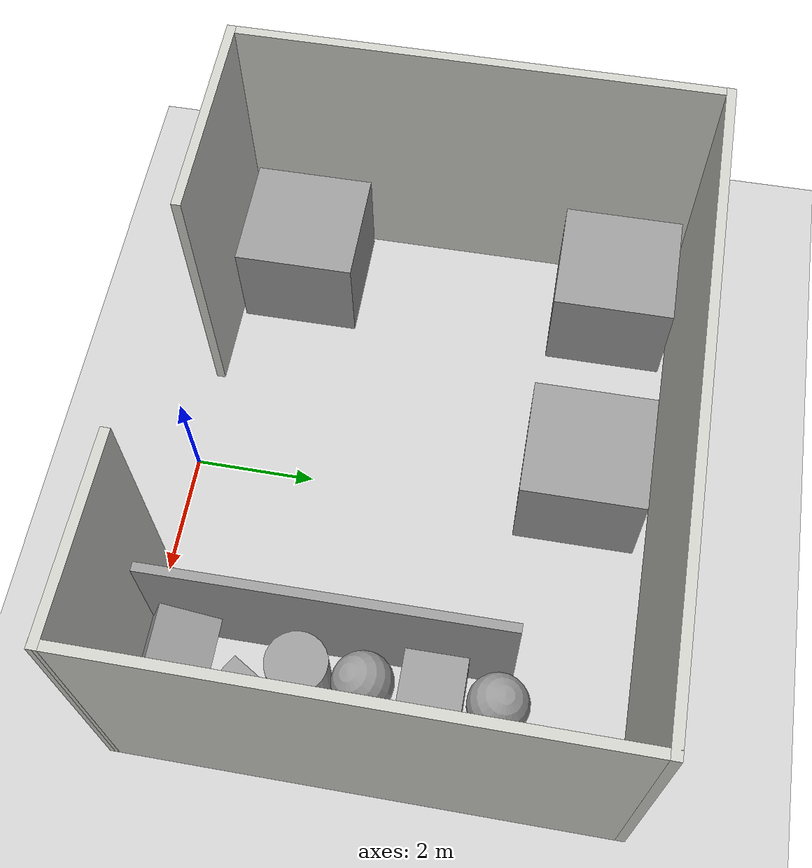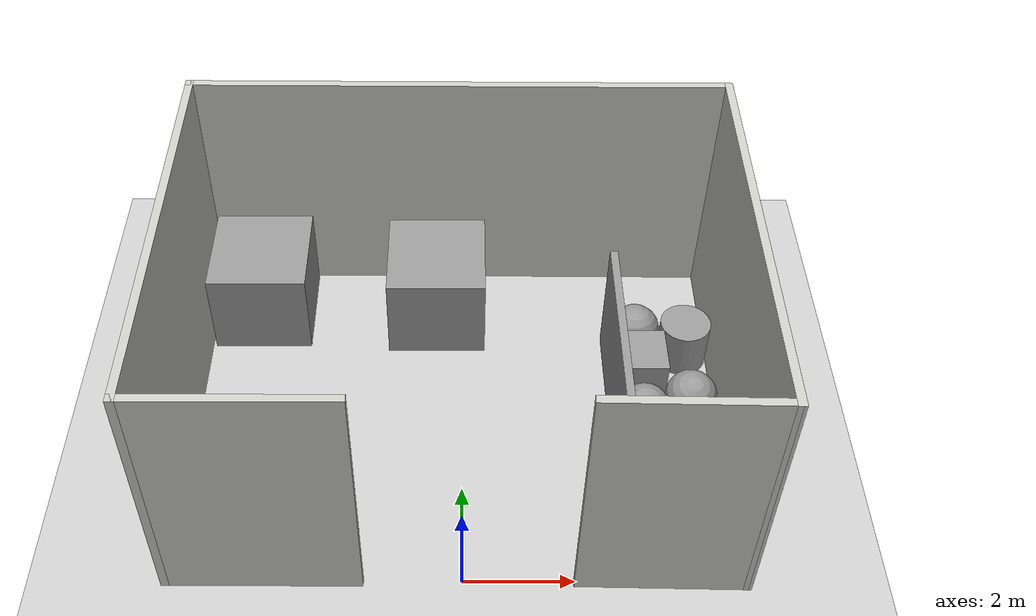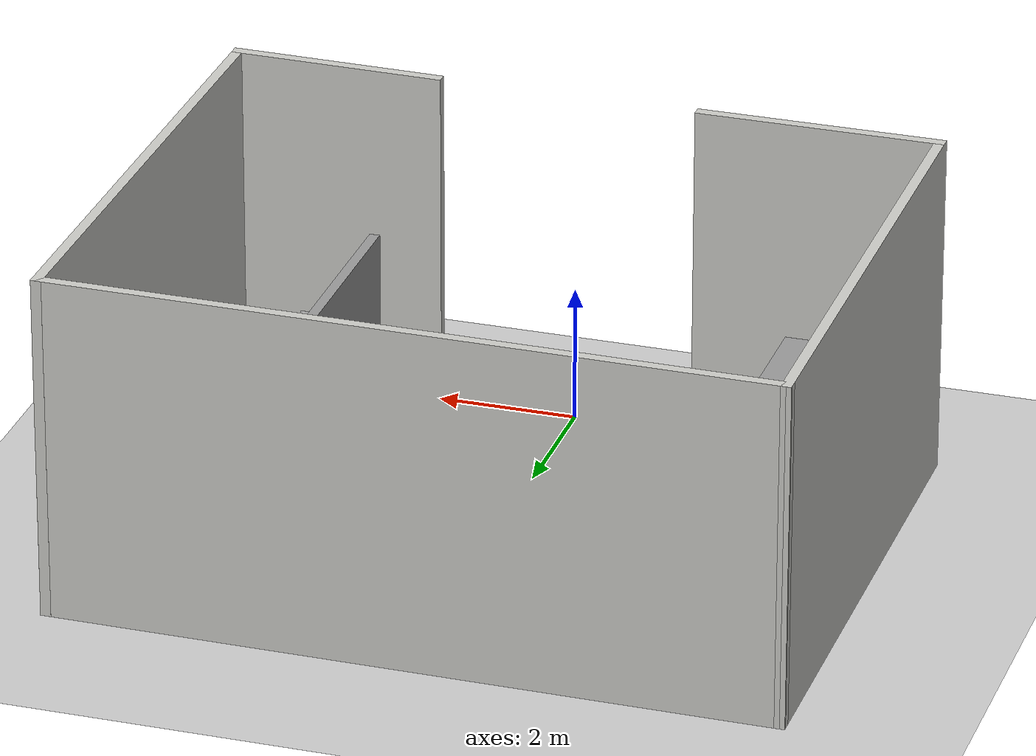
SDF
<sdf version="1.7">
 <world name="default">
  <light name="sun" type="directional">
   <pose>0 0 10 0 -0 0</pose>
   <diffuse>0.8 0.8 0.8 1</diffuse>
   <specular>0.2 0.2 0.2 1</specular>
   <attenuation>
    <range>1000</range>
    <constant>0.9</constant>
    <linear>0.01</linear>
    <quadratic>0.001</quadratic>
   </attenuation>
   <direction>-0.5 0.1 -0.9</direction>
   <spot><inner_angle>0</inner_angle><outer_angle>0</outer_angle><falloff>0</falloff></spot>
  </light>
  <model name="ground_plane">
   <static>1</static>
   <link name="link">
    <collision name="collision">
     <geometry><plane><normal>0 0 1</normal><size>100 100</size></plane></geometry>
     <surface><friction><ode><mu>100</mu><mu2>50</mu2></ode></friction></surface>
    </collision>
    <visual name="visual">
     <cast_shadows>0</cast_shadows>
     <geometry><plane><normal>0 0 1</normal><size>100 100</size></plane></geometry>
     <material>
      <script><uri>file://media/materials/scripts/gazebo.material</uri><name>Gazebo/Grey</name></script>
     </material>
    </visual>
   </link>
  </model>
  <gravity>0 0 -9.8</gravity>
  <magnetic_field>6e-06 2.3e-05 -4.2e-05</magnetic_field>
  <atmosphere type="adiabatic"/>
  <physics type="ode">
   <max_step_size>0.001</max_step_size>
   <real_time_factor>1</real_time_factor>
   <real_time_update_rate>1000</real_time_update_rate>
  </physics>
  <scene><ambient>0.4 0.4 0.4 1</ambient><background>0.7 0.7 0.7 1</background><shadows>1</shadows></scene>
  <audio><device>default</device></audio>
  <spherical_coordinates>
   <surface_model>EARTH_WGS84</surface_model>
   <latitude_deg>0</latitude_deg>
   <longitude_deg>0</longitude_deg>
   <elevation>0</elevation>
   <heading_deg>0</heading_deg>
  </spherical_coordinates>
  <model name="Untitled">
   <pose>-0.0765 3.87918 0 0 -0 0</pose>
   <link name="Wall_10">
    <collision name="Wall_10_Collision">
     <geometry><box><size>3.5535 0.15 5</size></box></geometry>
     <pose>0 0 2.5 0 -0 0</pose>
    </collision>
    <visual name="Wall_10_Visual">
     <pose>0 0 2.5 0 -0 0</pose>
     <geometry><box><size>3.5535 0.15 5</size></box></geometry>
     <material>
      <script><uri>file://media/materials/scripts/gazebo.material</uri><name>Gazebo/CeilingTiled</name></script>
      <ambient>1 1 1 1</ambient>
     </material>
     <meta><layer>0</layer></meta>
    </visual>
    <pose>-3.4285 -3.89752 0 0 -0 3.14159</pose>
   </link>
   <link name="Wall_11">
    <collision name="Wall_11_Collision">
     <geometry><box><size>8 0.15 5</size></box></geometry>
     <pose>0 0 2.5 0 -0 0</pose>
    </collision>
    <visual name="Wall_11_Visual">
     <pose>0 0 2.5 0 -0 0</pose>
     <geometry><box><size>8 0.15 5</size></box></geometry>
     <material>
      <script><uri>file://media/materials/scripts/gazebo.material</uri><name>Gazebo/CeilingTiled</name></script>
      <ambient>1 1 1 1</ambient>
     </material>
     <meta><layer>0</layer></meta>
    </visual>
    <pose>-5.1305 0.02748 0 0 -0 1.5708</pose>
   </link>
   <link name="Wall_12">
    <collision name="Wall_12_Collision">
     <geometry><box><size>10.4116 0.15 5</size></box></geometry>
     <pose>0 0 2.5 0 -0 0</pose>
    </collision>
    <visual name="Wall_12_Visual">
     <pose>0 0 2.5 0 -0 0</pose>
     <geometry><box><size>10.4116 0.15 5</size></box></geometry>
     <material>
      <script><uri>file://media/materials/scripts/gazebo.material</uri><name>Gazebo/CeilingTiled</name></script>
      <ambient>1 1 1 1</ambient>
     </material>
     <meta><layer>0</layer></meta>
    </visual>
    <pose>-0 3.92548 0 0 -0 -0.005263</pose>
   </link>
   <link name="Wall_13">
    <collision name="Wall_13_Collision">
     <geometry><box><size>8.00062 0.15 5</size></box></geometry>
     <pose>0 0 2.5 0 -0 0</pose>
    </collision>
    <visual name="Wall_13_Visual">
     <pose>0 0 2.5 0 -0 0</pose>
     <geometry><box><size>8.00062 0.15 5</size></box></geometry>
     <material>
      <script><uri>file://media/materials/scripts/gazebo.material</uri><name>Gazebo/CeilingTiled</name></script>
      <ambient>1 1 1 1</ambient>
     </material>
     <meta><layer>0</layer></meta>
    </visual>
    <pose>5.1035 -0.026519 0 0 -0 -1.57767</pose>
   </link>
   <link name="Wall_14">
    <collision name="Wall_14_Collision">
     <geometry><box><size>3.10734 0.15 5</size></box></geometry>
     <pose>0 0 2.5 0 -0 0</pose>
    </collision>
    <visual name="Wall_14_Visual">
     <pose>0 0 2.5 0 -0 0</pose>
     <geometry><box><size>3.10734 0.15 5</size></box></geometry>
     <material>
      <script><uri>file://media/materials/scripts/gazebo.material</uri><name>Gazebo/CeilingTiled</name></script>
      <ambient>1 1 1 1</ambient>
     </material>
     <meta><layer>0</layer></meta>
    </visual>
    <pose>3.598 -3.92452 0 0 -0 3.12333</pose>
   </link>
   <static>1</static>
  </model>
  <model name="unit_box">
   <pose>-4.08496 6.64776 0.894775 -5e-06 -0 -0.000536</pose>
   <link name="link">
    <inertial>
     <mass>1</mass>
     <inertia>
      <ixx>0.166667</ixx>
      <ixy>0</ixy>
      <ixz>0</ixz>
      <iyy>0.166667</iyy>
      <iyz>0</iyz>
      <izz>0.166667</izz>
     </inertia>
    </inertial>
    <collision name="collision"><geometry><box><size>1.95669 2.01631 1.78955</size></box></geometry></collision>
    <visual name="visual">
     <geometry><box><size>1.95669 2.01631 1.78955</size></box></geometry>
     <material>
      <script><name>Gazebo/Grey</name><uri>file://media/materials/scripts/gazebo.material</uri></script>
     </material>
    </visual>
   </link>
  </model>
  <model name="unit_box_clone">
   <pose>-0.521437 6.52877 0.894775 0 -5e-06 -0.000536</pose>
   <link name="link">
    <inertial>
     <mass>1</mass>
     <inertia>
      <ixx>0.166667</ixx>
      <ixy>0</ixy>
      <ixz>0</ixz>
      <iyy>0.166667</iyy>
      <iyz>0</iyz>
      <izz>0.166667</izz>
     </inertia>
    </inertial>
    <collision name="collision"><geometry><box><size>1.95669 2.0163 1.78956</size></box></geometry></collision>
    <visual name="visual">
     <geometry><box><size>1.95669 2.0163 1.78956</size></box></geometry>
     <material>
      <script><name>Gazebo/Grey</name><uri>file://media/materials/scripts/gazebo.material</uri></script>
     </material>
    </visual>
   </link>
  </model>
  <model name="unit_box_clone_0">
   <pose>-4.08296 1.13861 0.894775 0 -5e-06 -0.000172</pose>
   <link name="link">
    <inertial>
     <mass>1</mass>
     <inertia>
      <ixx>0.166667</ixx>
      <ixy>0</ixy>
      <ixz>0</ixz>
      <iyy>0.166667</iyy>
      <iyz>0</iyz>
      <izz>0.166667</izz>
     </inertia>
    </inertial>
    <collision name="collision"><geometry><box><size>1.95669 2.0163 1.78956</size></box></geometry></collision>
    <visual name="visual">
     <geometry><box><size>1.95669 2.0163 1.78956</size></box></geometry>
     <material>
      <script><name>Gazebo/Grey</name><uri>file://media/materials/scripts/gazebo.material</uri></script>
     </material>
    </visual>
   </link>
  </model>
  <model name="Untitled_0">
   <pose>1.50627 2.97398 0 0 -0 0</pose>
   <link name="Wall_21">
    <collision name="Wall_21_Collision">
     <geometry><box><size>5.75 0.15 2.5</size></box></geometry>
     <pose>0 0 1.25 0 -0 0</pose>
    </collision>
    <visual name="Wall_21_Visual">
     <pose>0 0 1.25 0 -0 0</pose>
     <geometry><box><size>5.75 0.15 2.5</size></box></geometry>
     <material>
      <script><uri>file://media/materials/scripts/gazebo.material</uri><name>Gazebo/Grey</name></script>
      <ambient>1 1 1 1</ambient>
     </material>
     <meta><layer>0</layer></meta>
    </visual>
    <pose>1.43127 0 0 0 -0 1.5708</pose>
   </link>
   <static>1</static>
  </model>
  <model name="unit_cylinder">
   <pose>3.51277 2.54344 0.5 0 -0 0.609852</pose>
   <link name="link">
    <inertial>
     <mass>1</mass>
     <inertia><ixx>0.145833</ixx><ixy>0</ixy><ixz>0</ixz><iyy>0.145833</iyy><iyz>0</iyz><izz>0.125</izz></inertia>
    </inertial>
    <collision name="collision">
     <geometry><cylinder><radius>0.5</radius><length>1</length></cylinder></geometry>
    </collision>
    <visual name="visual">
     <geometry><cylinder><radius>0.5</radius><length>1</length></cylinder></geometry>
     <material>
      <script><name>Gazebo/Grey</name><uri>file://media/materials/scripts/gazebo.material</uri></script>
     </material>
    </visual>
   </link>
  </model>
  <model name="unit_sphere">
   <pose>3.51344 3.5597 0.5 0.427295 0.149885 -0.28465</pose>
   <link name="link">
    <inertial>
     <mass>1</mass>
     <inertia><ixx>0.1</ixx><ixy>0</ixy><ixz>0</ixz><iyy>0.1</iyy><iyz>0</iyz><izz>0.1</izz></inertia>
    </inertial>
    <collision name="collision"><geometry><sphere><radius>0.5</radius></sphere></geometry></collision>
    <visual name="visual">
     <geometry><sphere><radius>0.5</radius></sphere></geometry>
     <material>
      <script><name>Gazebo/Grey</name><uri>file://media/materials/scripts/gazebo.material</uri></script>
     </material>
    </visual>
   </link>
  </model>
  <model name="unit_cylinder_0">
   <pose>4.44547 2.90415 0.499993 0 4e-06 0.065394</pose>
   <link name="link">
    <inertial>
     <mass>1</mass>
     <inertia><ixx>0.145833</ixx><ixy>0</ixy><ixz>0</ixz><iyy>0.145833</iyy><iyz>0</iyz><izz>0.125</izz></inertia>
    </inertial>
    <collision name="collision">
     <geometry><cylinder><radius>0.5</radius><length>1</length></cylinder></geometry>
    </collision>
    <visual name="visual">
     <geometry><cylinder><radius>0.5</radius><length>1</length></cylinder></geometry>
     <material>
      <script><name>Gazebo/Grey</name><uri>file://media/materials/scripts/gazebo.material</uri></script>
     </material>
    </visual>
   </link>
  </model>
  <model name="unit_box_0">
   <pose>3.47686 0.650234 0.630129 -0.307064 -0.005164 0.007324</pose>
   <link name="link">
    <inertial>
     <mass>1</mass>
     <inertia>
      <ixx>0.166667</ixx>
      <ixy>0</ixy>
      <ixz>0</ixz>
      <iyy>0.166667</iyy>
      <iyz>0</iyz>
      <izz>0.166667</izz>
     </inertia>
    </inertial>
    <collision name="collision"><geometry><box><size>1 1 1</size></box></geometry></collision>
    <visual name="visual">
     <geometry><box><size>1 1 1</size></box></geometry>
     <material>
      <script><name>Gazebo/Grey</name><uri>file://media/materials/scripts/gazebo.material</uri></script>
     </material>
    </visual>
   </link>
  </model>
  <model name="unit_sphere_0">
   <pose>4.45234 3.90764 0.5 0.181888 0.183712 -0.669124</pose>
   <link name="link">
    <inertial>
     <mass>1</mass>
     <inertia><ixx>0.1</ixx><ixy>0</ixy><ixz>0</ixz><iyy>0.1</iyy><iyz>0</iyz><izz>0.1</izz></inertia>
    </inertial>
    <collision name="collision"><geometry><sphere><radius>0.5</radius></sphere></geometry></collision>
    <visual name="visual">
     <geometry><sphere><radius>0.5</radius></sphere></geometry>
     <material>
      <script><name>Gazebo/Grey</name><uri>file://media/materials/scripts/gazebo.material</uri></script>
     </material>
    </visual>
   </link>
  </model>
  <model name="unit_box_1">
   <pose>3.51263 4.64949 0.499995 0 9e-06 0.000189</pose>
   <link name="link">
    <inertial>
     <mass>1</mass>
     <inertia>
      <ixx>0.166667</ixx>
      <ixy>0</ixy>
      <ixz>0</ixz>
      <iyy>0.166667</iyy>
      <iyz>0</iyz>
      <izz>0.166667</izz>
     </inertia>
    </inertial>
    <collision name="collision"><geometry><box><size>1 1 1</size></box></geometry></collision>
    <visual name="visual">
     <geometry><box><size>1 1 1</size></box></geometry>
     <material>
      <script><name>Gazebo/Grey</name><uri>file://media/materials/scripts/gazebo.material</uri></script>
     </material>
    </visual>
   </link>
  </model>
  <model name="unit_cylinder_1">
   <pose>4.4624 5.36831 0.499997 4e-06 -2e-06 -0.395742</pose>
   <link name="link">
    <inertial>
     <mass>1</mass>
     <inertia><ixx>0.145833</ixx><ixy>0</ixy><ixz>0</ixz><iyy>0.145833</iyy><iyz>0</iyz><izz>0.125</izz></inertia>
    </inertial>
    <collision name="collision">
     <geometry><cylinder><radius>0.5</radius><length>1</length></cylinder></geometry>
    </collision>
    <visual name="visual">
     <geometry><cylinder><radius>0.5</radius><length>1</length></cylinder></geometry>
     <material>
      <script><name>Gazebo/Grey</name><uri>file://media/materials/scripts/gazebo.material</uri></script>
     </material>
    </visual>
   </link>
  </model>
  <model name="unit_sphere_1">
   <pose>3.5126 5.6839 0.5 -0.191557 -0.03224 0.192476</pose>
   <link name="link">
    <inertial>
     <mass>1</mass>
     <inertia><ixx>0.1</ixx><ixy>0</ixy><ixz>0</ixz><iyy>0.1</iyy><iyz>0</iyz><izz>0.1</izz></inertia>
    </inertial>
    <collision name="collision"><geometry><sphere><radius>0.5</radius></sphere></geometry></collision>
    <visual name="visual">
     <geometry><sphere><radius>0.5</radius></sphere></geometry>
     <material>
      <script><name>Gazebo/Grey</name><uri>file://media/materials/scripts/gazebo.material</uri></script>
     </material>
    </visual>
   </link>
  </model>
  <model name="unit_box_2">
   <pose>4.24954 1.77175 0.5 -0 -0 -0.549402</pose>
   <link name="link">
    <inertial>
     <mass>1</mass>
     <inertia>
      <ixx>0.166667</ixx>
      <ixy>0</ixy>
      <ixz>0</ixz>
      <iyy>0.166667</iyy>
      <iyz>0</iyz>
      <izz>0.166667</izz>
     </inertia>
    </inertial>
    <collision name="collision"><geometry><box><size>1 1 1</size></box></geometry></collision>
    <visual name="visual">
     <geometry><box><size>1 1 1</size></box></geometry>
     <material>
      <script><name>Gazebo/Grey</name><uri>file://media/materials/scripts/gazebo.material</uri></script>
     </material>
    </visual>
   </link>
  </model>
  <model name="unit_sphere_2">
   <pose>4.43358 0.4616 0.44866 -1.93703 0.517644 2.95722</pose>
   <link name="link">
    <inertial>
     <mass>1</mass>
     <inertia><ixx>0.1</ixx><ixy>0</ixy><ixz>0</ixz><iyy>0.1</iyy><iyz>0</iyz><izz>0.1</izz></inertia>
    </inertial>
    <collision name="collision"><geometry><sphere><radius>0.5</radius></sphere></geometry></collision>
    <visual name="visual">
     <geometry><sphere><radius>0.5</radius></sphere></geometry>
     <material>
      <script><name>Gazebo/Grey</name><uri>file://media/materials/scripts/gazebo.material</uri></script>
     </material>
    </visual>
   </link>
  </model>
 </world>
</sdf>
